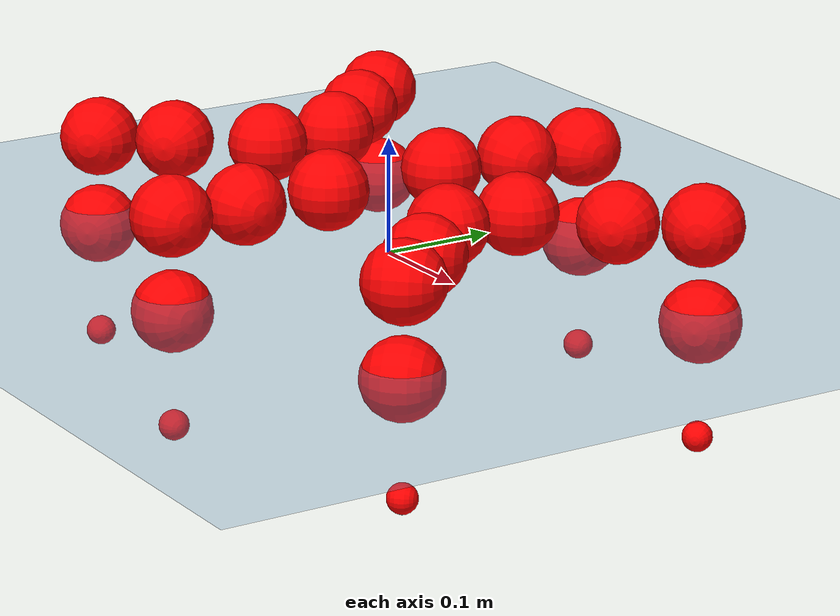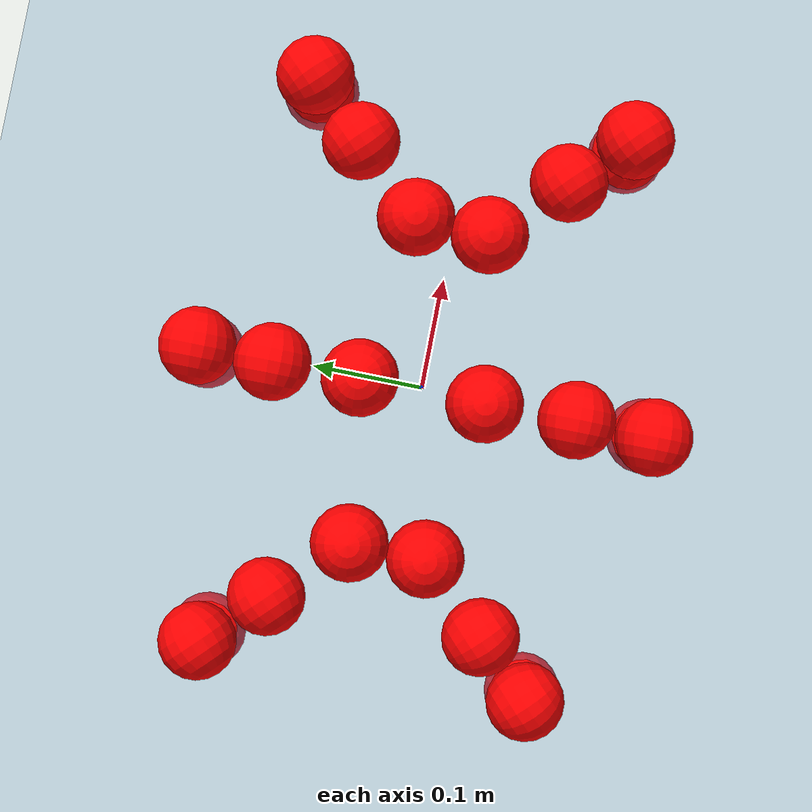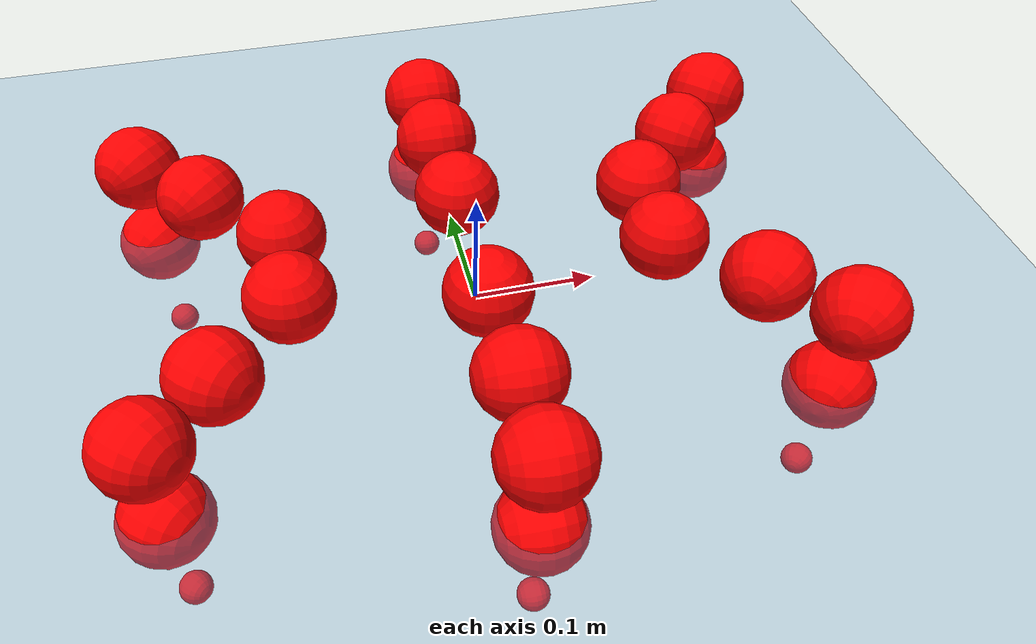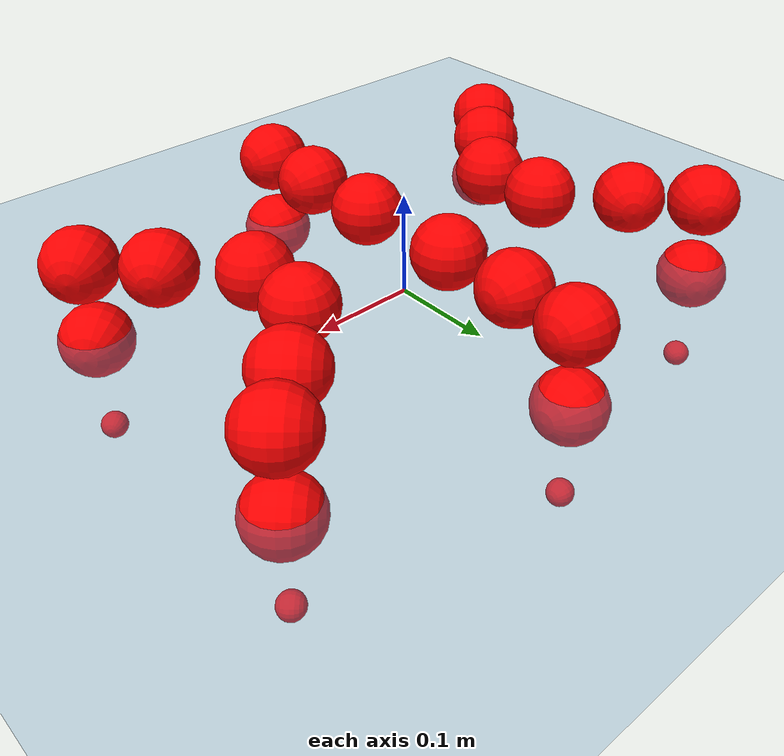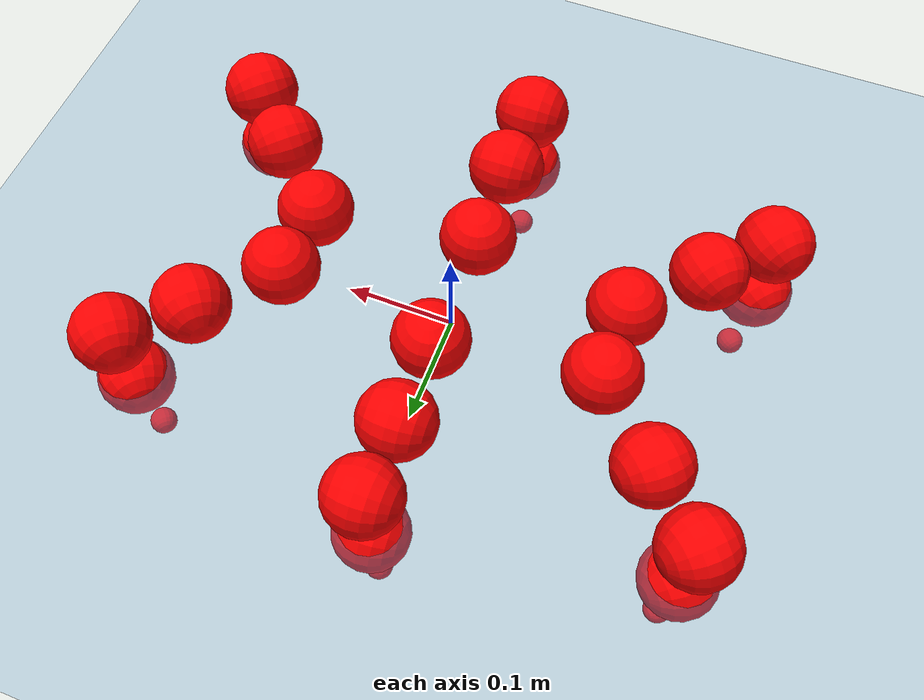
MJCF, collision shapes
<mujoco model="Golem">
  <compiler angle="radian" assetdir="assets" balanceinertia="true" inertiafromgeom="false"/>

  <option timestep="0.005" density="1.2" viscosity="2e-05"/>

  <size nkey="1"/>

  <visual>
    <quality shadowsize="8192"/>
    <map shadowclip="0.5"/>
  </visual>

  <default>
    <default class="/">
      <joint armature="0.01" damping="0.01" frictionloss="0.01"/>
      <geom contype="0" conaffinity="0" group="1" solref="-1000 -80"/>
      <site size="0.01 0.005 0.005" group="5"/>
      <general forcelimited="true" biastype="affine" gainprm="25" biasprm="0 -25 -0.5"/>
      <default class="visual">
        <geom type="mesh" group="2"/>
      </default>
      <default class="collision">
        <geom group="3"/>
      </default>
      <default class="foot">
        <geom size="0.01 0 0" condim="6" group="4" priority="1" solimp="0.015 1 0.01"/>
      </default>
      <default class="reward_collision_sphere">
        <geom group="5" rgba="1 0 0 1"/>
      </default>
    </default>
  </default>

  <asset>
    <texture type="skybox" colorspace="auto" name="//unnamed_texture_0" builtin="gradient" rgb1="0.95 0.95 0.95" rgb2="0.95 0.95 0.95" width="100" height="600"/>
    <texture type="2d" colorspace="auto" name="texplane" builtin="checker" rgb1="0.345 0.575 0.748" rgb2="0.345 0.575 0.748" markrgb="1 1 1" width="512" height="512"/>
    <material name="MatPlane" class="/" texture="texplane" texuniform="true" texrepeat="2 2" specular="0.9"/>
    <mesh name="body" class="/" file="body.stl" scale="0.001 0.001 0.001"/>
    <mesh name="coxa" class="/" file="coxa.stl" scale="0.001 0.001 0.001"/>
    <mesh name="femur" class="/" file="femur.stl" scale="0.001 0.001 0.001"/>
    <mesh name="tibia" class="/" file="tibia.stl" scale="0.001 0.001 0.001"/>
    <mesh name="tarsus" class="/" file="tarsus.stl" scale="0.001 0.001 0.001"/>
  </asset>

  <worldbody>
    <geom name="floor" class="/" size="100 100 0.125" type="plane" group="0" material="MatPlane"/>
    <light name="toplight_shadow" class="/" pos="0 0 5" dir="0.0990148 0.0990148 -0.990148" type="directional" ambient="0.04 0.04 0.04" diffuse="0.55 0.55 0.55" specular="0.12 0.12 0.12"/>
    <light name="toplight_fill" class="/" pos="0 0 5" dir="0.0990148 0.0990148 -0.990148" type="directional" castshadow="false" ambient="0.04 0.04 0.04" diffuse="0.3 0.3 0.3" specular="0.08 0.08 0.08"/>
    <body name="trunk" pos="-0.00144633 -0.00032861 0.000552217" quat="0.999999 -0.00109196 -4.53641e-05 0.000575805">
      <inertial pos="0.0011022 0.00234471 -0.000514508" quat="0.999999 0.0010578 0.000421877 -0.00111155" mass="2.30025" diaginertia="0.00653335 0.00111721 0.0102049"/>
      <joint name="//unnamed_joint_0" type="free"/>
      <geom name="//unnamed_geom_1" class="/" pos="0 0 0.0647734" quat="1 0 0 0" type="mesh" rgba="0.9 0.9 0.9 1" mesh="body"/>
      <site name="imu" class="/" pos="0.120565 0.0100835 0.101313" size="0.00861516"/>
      <camera name="track" class="/" pos="0 -1.29285 0" quat="0.707107 0.707107 0 0" mode="trackcom"/>
      <camera name="ego_camera" class="/" pos="0.120385 0 0.101209" quat="-0.5 -0.5 0.5 0.5"/>
      <body name="coxa_RR" pos="-0.164788 -0.0520529 0.064812" quat="0.382084 -0.000828943 -0.000420956 -0.924127">
        <inertial pos="0.000797608 -0.000318314 -9.17024e-05" quat="0.999917 0.00671609 -0.0104556 0.0032824" mass="0.135802" diaginertia="0.00699235 0.00114925 0.0110684"/>
        <joint name="coxa_joint_RR" class="/" pos="0 0 0" axis="0.00233704 0.00218844 -0.999995" range="-3.13586 3.08739" armature="0.00971985" damping="0.0101483" frictionloss="0.00866543"/>
        <geom name="//unnamed_geom_2" class="/" type="mesh" rgba="0.2 0.2 0.2 1" mesh="coxa"/>
        <geom name="//unnamed_geom_3" class="reward_collision_sphere" size="0.0344606" pos="-0.0277811 0 0"/>
        <body name="femur_RR" pos="0.0556055 0.00252902 -0.00190979" quat="0.499618 -0.499967 0.500403 0.500012">
          <inertial pos="0.00236778 -0.000638505 5.71079e-05" quat="0.999935 0.00827034 -0.00752283 0.00221734" mass="0.13012" diaginertia="0.00687603 0.00114289 0.0106605"/>
          <joint name="femur_joint_RR" class="/" pos="0 0 0" axis="0.00118314 0.000983189 -0.999999" stiffness="0.00342927" range="-3.1307 3.12327" armature="0.00875568" damping="0.00668063" frictionloss="0.00838407"/>
          <geom name="//unnamed_geom_4" class="/" type="mesh" rgba="0.9 0.9 0.9 1" mesh="femur"/>
          <geom name="//unnamed_geom_5" class="reward_collision_sphere" size="0.0344606"/>
          <body name="tibia_RR" pos="0.00125417 -0.068055 0.0011943" quat="-0.00015779 1 -0.000161334 -6.31297e-05">
            <inertial pos="-0.00157326 0.000142472 0.000525075" quat="0.999997 -0.000789681 0.00135765 0.00173765" mass="0.131748" diaginertia="0.00674668 0.0011203 0.010821"/>
            <joint name="tibia_joint_RR" class="/" pos="0 0 0" axis="0.0010894 -0.0106032 0.999943" stiffness="0.00240825" range="-3.12679 3.13578" armature="0.00867141" damping="0.00211155" frictionloss="0.00866407"/>
            <geom name="//unnamed_geom_6" class="/" type="mesh" rgba="0.2 0.2 0.2 1" mesh="tibia"/>
            <geom name="//unnamed_geom_7" class="reward_collision_sphere" size="0.0344606"/>
            <body name="tarsus_RR" pos="0.0800614 0.00220799 9.71314e-05" quat="1 -0.000229475 -7.78926e-05 -9.14467e-05">
              <inertial pos="0.0569192 0.000132157 0.000666159" quat="0.501384 0.499541 0.49944 0.499632" mass="0.131845" diaginertia="0.0070751 0.00115517 0.0110124"/>
              <joint name="tarsus_joint_RR" class="/" pos="0 0 0" axis="-0.000502687 -0.00268687 0.999996" range="-3.14213 3.13746" armature="0.00855142" damping="0.0423929" frictionloss="0.00783663"/>
              <geom name="//unnamed_geom_8" class="/" type="mesh" rgba="0.9 0.9 0.9 1" mesh="tarsus"/>
              <geom name="foot_1" class="foot" size="0.00892162" pos="0.103716 0 0" quat="0 -0.707107 0 0.707107"/>
              <geom name="//unnamed_geom_10" class="reward_collision_sphere" size="0.0344606"/>
              <geom name="//unnamed_geom_11" class="reward_collision_sphere" size="0.0129227" pos="0.0995491 0 0"/>
              <site name="foot_1" class="foot" pos="0.103716 0 0" quat="0 -0.707107 0 0.707107" size="0.00861516"/>
            </body>
          </body>
        </body>
      </body>
      <body name="coxa_RM" pos="-0.00266304 -0.0844703 0.0624964" quat="0.706998 -0.000159813 0.000447406 -0.707215">
        <inertial pos="-0.002141 0.000626372 0.00130764" quat="1 8.02316e-06 8.09307e-05 -0.00067288" mass="0.131664" diaginertia="0.00703144 0.00116137 0.0109818"/>
        <joint name="coxa_joint_RM" class="/" pos="0 0 0" axis="0.00337715 -0.00402583 -0.999986" range="-3.10429 3.14403" armature="0.00922915" damping="0.0135012" frictionloss="0.00860768"/>
        <geom name="//unnamed_geom_12" class="/" type="mesh" rgba="0.2 0.2 0.2 1" mesh="coxa"/>
        <geom name="//unnamed_geom_13" class="reward_collision_sphere" size="0.0344606" pos="-0.0277811 0 0"/>
        <body name="femur_RM" pos="0.0536168 0.0020225 0.00101692" quat="0.49999 -0.499919 0.499999 0.500092">
          <inertial pos="0.000167615 -0.000602263 -0.000764531" quat="0.999919 -0.00720728 -0.0101598 -0.00246833" mass="0.123386" diaginertia="0.00660991 0.00109943 0.010403"/>
          <joint name="femur_joint_RM" class="/" pos="0 0 0" axis="0.000297602 0.000114499 -1" range="-3.19115 3.16029" armature="0.00881236" damping="0.00832803" frictionloss="0.00864657"/>
          <geom name="//unnamed_geom_14" class="/" type="mesh" rgba="0.9 0.9 0.9 1" mesh="femur"/>
          <geom name="//unnamed_geom_15" class="reward_collision_sphere" size="0.0344606"/>
          <body name="tibia_RM" pos="-0.000887423 -0.0688002 -0.00164723" quat="0.000772432 0.999999 -0.000374545 -0.00089285">
            <inertial pos="-0.00138673 -0.000574207 0.00111774" quat="0.999967 -0.0022341 0.00774234 0.00134613" mass="0.127006" diaginertia="0.00675552 0.00109313 0.0102482"/>
            <joint name="tibia_joint_RM" class="/" pos="0 0 0" axis="-0.00186945 -0.00182601 0.999997" range="-3.13808 3.14359" armature="0.00872067" damping="0" frictionloss="0.00906294"/>
            <geom name="//unnamed_geom_16" class="/" type="mesh" rgba="0.2 0.2 0.2 1" mesh="tibia"/>
            <geom name="//unnamed_geom_17" class="reward_collision_sphere" size="0.0344606"/>
            <body name="tarsus_RM" pos="0.0816578 0.00048319 -0.00106372" quat="0.999999 -0.00103466 5.67977e-05 0.000431642">
              <inertial pos="0.0557434 0.000361215 0.000263466" quat="0.500493 0.502353 0.500764 0.496371" mass="0.126718" diaginertia="0.0068301 0.00111766 0.010621"/>
              <joint name="tarsus_joint_RM" class="/" pos="0 0 0" axis="0.00601702 -0.00871336 0.999944" range="-3.16498 3.19017" armature="0.0084129" damping="0.00698928" frictionloss="0.00751127"/>
              <geom name="//unnamed_geom_18" class="/" type="mesh" rgba="0.9 0.9 0.9 1" mesh="tarsus"/>
              <geom name="foot_2" class="foot" size="0.00825801" pos="0.103716 0 0" quat="0 -0.707107 0 0.707107"/>
              <geom name="//unnamed_geom_20" class="reward_collision_sphere" size="0.0344606"/>
              <geom name="//unnamed_geom_21" class="reward_collision_sphere" size="0.0129227" pos="0.0995491 0 0"/>
              <site name="foot_2" class="foot" pos="0.103716 0 0" quat="0 -0.707107 0 0.707107" size="0.00861516"/>
            </body>
          </body>
        </body>
      </body>
      <body name="coxa_RF" pos="0.162393 -0.0516478 0.0657025" quat="0.924075 0.00090628 0.000181807 -0.382209">
        <inertial pos="0.00251667 0.00244736 0.000126632" quat="0.999998 -0.0016948 0.000335694 0.000873466" mass="0.126972" diaginertia="0.00688734 0.00111627 0.010618"/>
        <joint name="coxa_joint_RF" class="/" pos="0 0 0" axis="0.00214066 0.000384349 -0.999998" range="-3.14251 3.08996" armature="0.00894962" damping="0.0183305" frictionloss="0.00857665"/>
        <geom name="//unnamed_geom_22" class="/" type="mesh" rgba="0.2 0.2 0.2 1" mesh="coxa"/>
        <geom name="//unnamed_geom_23" class="reward_collision_sphere" size="0.0344606" pos="-0.0277811 0 0"/>
        <body name="femur_RF" pos="0.0549938 -0.000653452 0.000314618" quat="0.50025 -0.500319 0.499122 0.500308">
          <inertial pos="-0.000175336 -0.000766435 0.00264849" quat="0.999946 -0.00957907 -0.00375485 0.00163549" mass="0.125243" diaginertia="0.00657736 0.00109238 0.00997267"/>
          <joint name="femur_joint_RF" class="/" pos="0 0 0" axis="0.0123649 -0.00333935 -0.999918" range="-3.14485 3.12997" armature="0.0098136" damping="0.0076568" frictionloss="0.00931868"/>
          <geom name="//unnamed_geom_24" class="/" type="mesh" rgba="0.9 0.9 0.9 1" mesh="femur"/>
          <geom name="//unnamed_geom_25" class="reward_collision_sphere" size="0.0344606"/>
          <body name="tibia_RF" pos="-0.000449338 -0.0690727 -0.00120846" quat="-4.51032e-06 1 1.00822e-05 9.76106e-06">
            <inertial pos="-0.000268322 0.000258985 4.22432e-05" quat="0.999961 0.00272789 0.00832079 -0.00095025" mass="0.12633" diaginertia="0.00661991 0.00110441 0.0107203"/>
            <joint name="tibia_joint_RF" class="/" pos="0 0 0" axis="0.00254967 -0.00164975 0.999995" range="-3.13571 3.1869" armature="0.00857855" damping="0.00548943" frictionloss="0.00824035"/>
            <geom name="//unnamed_geom_26" class="/" type="mesh" rgba="0.2 0.2 0.2 1" mesh="tibia"/>
            <geom name="//unnamed_geom_27" class="reward_collision_sphere" size="0.0344606"/>
            <body name="tarsus_RF" pos="0.0798593 -0.000938909 0.00149641" quat="0.999999 0.00113095 0.000219022 -0.000444829">
              <inertial pos="0.0558027 0.000194885 0.000330379" quat="0.496508 0.503216 0.50043 0.499824" mass="0.127035" diaginertia="0.00671743 0.00111051 0.0102252"/>
              <joint name="tarsus_joint_RF" class="/" pos="0 0 0" axis="-0.00687592 -0.000893156 0.999976" range="-3.13602 3.12818" armature="0.00859866" damping="0.0112076" frictionloss="0.00893215"/>
              <geom name="//unnamed_geom_28" class="/" type="mesh" rgba="0.9 0.9 0.9 1" mesh="tarsus"/>
              <geom name="foot_3" class="foot" size="0.00917989" pos="0.103716 0 0" quat="0 -0.707107 0 0.707107"/>
              <geom name="//unnamed_geom_30" class="reward_collision_sphere" size="0.0344606"/>
              <geom name="//unnamed_geom_31" class="reward_collision_sphere" size="0.0129227" pos="0.0995491 0 0"/>
              <site name="foot_3" class="foot" pos="0.103716 0 0" quat="0 -0.707107 0 0.707107" size="0.00861516"/>
            </body>
          </body>
        </body>
      </body>
      <body name="coxa_LR" pos="-0.16403 0.0546604 0.0660721" quat="0.382201 -0.000799198 -0.00044866 0.924079">
        <inertial pos="0.000156581 -0.000697536 -0.000603021" quat="0.999999 0.000826997 0.000486162 -0.000303896" mass="0.128691" diaginertia="0.00665491 0.00112928 0.0103175"/>
        <joint name="coxa_joint_LR" class="/" pos="0 0 0" axis="-0.000608409 -0.0144372 -0.999896" range="-3.10005 3.1414" armature="0.0086907" damping="0.00522753" frictionloss="0.00858811"/>
        <geom name="//unnamed_geom_32" class="/" type="mesh" rgba="0.2 0.2 0.2 1" mesh="coxa"/>
        <geom name="//unnamed_geom_33" class="reward_collision_sphere" size="0.0344606" pos="-0.0277811 0 0"/>
        <body name="femur_LR" pos="0.0583107 -0.00150973 -0.0023631" quat="0.499927 -0.499806 0.500226 0.500041">
          <inertial pos="-0.00077131 4.46192e-05 -0.000284292" quat="0.999996 -0.00113853 0.00088394 -0.00224752" mass="0.126741" diaginertia="0.0068232 0.00112569 0.010726"/>
          <joint name="femur_joint_LR" class="/" pos="0 0 0" axis="-0.00566225 0.00228717 0.999981" range="-3.18654 3.18419" armature="0.00871335" damping="0" frictionloss="0.00905178"/>
          <geom name="//unnamed_geom_34" class="/" type="mesh" rgba="0.9 0.9 0.9 1" mesh="femur"/>
          <geom name="//unnamed_geom_35" class="reward_collision_sphere" size="0.0344606"/>
          <body name="tibia_LR" pos="0.000515217 -0.0713167 -0.00126611" quat="0.000412195 1 2.35567e-05 0.000313395">
            <inertial pos="-0.00274475 0.0011027 -0.00223857" quat="0.999998 -0.000546769 0.00147719 0.000981292" mass="0.127752" diaginertia="0.00683528 0.00116409 0.0105282"/>
            <joint name="tibia_joint_LR" class="/" pos="0 0 0" axis="0.00171288 -0.0013908 -0.999998" range="-3.09216 3.17369" armature="0.00857521" damping="0.00172768" frictionloss="0.0089498"/>
            <geom name="//unnamed_geom_36" class="/" type="mesh" rgba="0.2 0.2 0.2 1" mesh="tibia"/>
            <geom name="//unnamed_geom_37" class="reward_collision_sphere" size="0.0344606"/>
            <body name="tarsus_LR" pos="0.0831382 0.000970705 -6.57919e-05" quat="1 -0.00014315 -3.99954e-05 5.124e-05">
              <inertial pos="0.0556762 -0.000433939 -0.000869743" quat="0.497872 0.500269 0.500122 0.50173" mass="0.131829" diaginertia="0.00696652 0.00117644 0.0109053"/>
              <joint name="tarsus_joint_LR" class="/" pos="0 0 0" axis="-0.0036769 0.0128171 -0.999911" stiffness="0.00358233" range="-3.13012 3.10709" armature="0.00888562" damping="0.0263874" frictionloss="0.00933074"/>
              <geom name="//unnamed_geom_38" class="/" type="mesh" rgba="0.9 0.9 0.9 1" mesh="tarsus"/>
              <geom name="foot_4" class="foot" size="0.00828427" pos="0.103716 0 0" quat="0.707107 0 -0.707107 0"/>
              <geom name="//unnamed_geom_40" class="reward_collision_sphere" size="0.0344606"/>
              <geom name="//unnamed_geom_41" class="reward_collision_sphere" size="0.0129227" pos="0.0995491 0 0"/>
              <site name="foot_4" class="foot" pos="0.103716 0 0" quat="0.707107 0 -0.707107 0" size="0.00861516"/>
            </body>
          </body>
        </body>
      </body>
      <body name="coxa_LM" pos="-0.00164676 0.082368 0.0645306" quat="0.707073 3.32372e-06 1.3892e-05 0.70714">
        <inertial pos="0.00273202 0.00247704 -0.000234352" quat="1 0.000349064 -0.000258374 4.11148e-05" mass="0.127426" diaginertia="0.00670678 0.00112695 0.0105629"/>
        <joint name="coxa_joint_LM" class="/" pos="0 0 0" axis="-0.00163114 -0.0037895 -0.999991" range="-3.12363 3.12301" armature="0.00949496" damping="0.00525935" frictionloss="0.00888094"/>
        <geom name="//unnamed_geom_42" class="/" type="mesh" rgba="0.2 0.2 0.2 1" mesh="coxa"/>
        <geom name="//unnamed_geom_43" class="reward_collision_sphere" size="0.0344606" pos="-0.0277811 0 0"/>
        <body name="femur_LM" pos="0.0499847 0.00127316 -0.00117259" quat="0.500044 -0.500047 0.498991 0.500916">
          <inertial pos="-0.00115285 0.000408198 0.000749947" quat="0.999963 0.00849931 -3.20994e-05 0.00120613" mass="0.126087" diaginertia="0.00686277 0.00109784 0.0103459"/>
          <joint name="femur_joint_LM" class="/" pos="0 0 0" axis="-0.000642656 -0.00225401 0.999997" range="-3.15166 3.14187" armature="0.00752459" damping="0" frictionloss="0.00881447"/>
          <geom name="//unnamed_geom_44" class="/" type="mesh" rgba="0.9 0.9 0.9 1" mesh="femur"/>
          <geom name="//unnamed_geom_45" class="reward_collision_sphere" size="0.0344606"/>
          <body name="tibia_LM" pos="0.00222776 -0.0671397 -0.00116195" quat="-7.94958e-06 1 3.53402e-06 3.35233e-05">
            <inertial pos="-0.0011996 -0.000450863 0.000127443" quat="0.999991 -0.000390009 0.00350799 0.00245147" mass="0.124301" diaginertia="0.00670571 0.0011403 0.010762"/>
            <joint name="tibia_joint_LM" class="/" pos="0 0 0" axis="0.00234574 -0.00482999 -0.999986" stiffness="0.000913093" range="-3.12391 3.16897" armature="0.00867851" damping="0" frictionloss="0.00829144"/>
            <geom name="//unnamed_geom_46" class="/" type="mesh" rgba="0.2 0.2 0.2 1" mesh="tibia"/>
            <geom name="//unnamed_geom_47" class="reward_collision_sphere" size="0.0344606"/>
            <body name="tarsus_LM" pos="0.0823366 0.00153662 -0.00149079" quat="1 7.16977e-05 7.20189e-05 0.000129318">
              <inertial pos="0.0571324 3.18941e-05 -0.000103608" quat="0.499222 0.500882 0.49932 0.500574" mass="0.135659" diaginertia="0.00699276 0.0011618 0.0106214"/>
              <joint name="tarsus_joint_LM" class="/" pos="0 0 0" axis="-0.00190563 0.00225828 -0.999996" stiffness="0.00971337" range="-3.13839 3.11535" armature="0.0085864" damping="0.0182589" frictionloss="0.0086203"/>
              <geom name="//unnamed_geom_48" class="/" type="mesh" rgba="0.9 0.9 0.9 1" mesh="tarsus"/>
              <geom name="foot_5" class="foot" size="0.00843597" pos="0.103716 0 0" quat="0.707107 0 -0.707107 0"/>
              <geom name="//unnamed_geom_50" class="reward_collision_sphere" size="0.0344606"/>
              <geom name="//unnamed_geom_51" class="reward_collision_sphere" size="0.0129227" pos="0.0995491 0 0"/>
              <site name="foot_5" class="foot" pos="0.103716 0 0" quat="0.707107 0 -0.707107 0" size="0.00861516"/>
            </body>
          </body>
        </body>
      </body>
      <body name="coxa_LF" pos="0.165086 0.0537228 0.0659628" quat="0.923869 -2.27934e-05 4.21301e-05 0.382709">
        <inertial pos="-0.000114634 -0.000969254 0.000447061" quat="1 9.76841e-05 -0.00014661 -3.83916e-05" mass="0.124985" diaginertia="0.00670645 0.00113329 0.0106853"/>
        <joint name="coxa_joint_LF" class="/" pos="0 0 0" axis="0.00803139 9.77185e-05 -0.999968" stiffness="0.000155009" range="-3.1328 3.14352" armature="0.00830504" damping="0.00756964" frictionloss="0.00867103"/>
        <geom name="//unnamed_geom_52" class="/" type="mesh" rgba="0.2 0.2 0.2 1" mesh="coxa"/>
        <geom name="//unnamed_geom_53" class="reward_collision_sphere" size="0.0344606" pos="-0.0277811 0 0"/>
        <body name="femur_LF" pos="0.0547308 0.00293477 -0.00251981" quat="0.499906 -0.50039 0.500068 0.499636">
          <inertial pos="-0.00215651 -0.000395319 0.000981802" quat="0.999998 -0.00118612 0.00092973 -0.00127226" mass="0.128982" diaginertia="0.00671149 0.00109623 0.0104491"/>
          <joint name="femur_joint_LF" class="/" pos="0 0 0" axis="-0.00763456 0.00921726 0.999928" range="-3.13949 3.09292" armature="0.00784009" damping="0.0027306" frictionloss="0.00821453"/>
          <geom name="//unnamed_geom_54" class="/" type="mesh" rgba="0.9 0.9 0.9 1" mesh="femur"/>
          <geom name="//unnamed_geom_55" class="reward_collision_sphere" size="0.0344606"/>
          <body name="tibia_LF" pos="-0.00219067 -0.0697135 0.00134718" quat="0.000198218 1 -0.000186181 -0.000307344">
            <inertial pos="-0.000976944 0.000157473 -0.000434273" quat="0.999931 -0.00932079 -0.00715134 -4.46399e-05" mass="0.12558" diaginertia="0.00677816 0.00112076 0.0105391"/>
            <joint name="tibia_joint_LF" class="/" pos="0 0 0" axis="-0.00145468 -0.00291674 -0.999995" range="-3.1362 3.13333" armature="0.00749101" damping="0" frictionloss="0.008526"/>
            <geom name="//unnamed_geom_56" class="/" type="mesh" rgba="0.2 0.2 0.2 1" mesh="tibia"/>
            <geom name="//unnamed_geom_57" class="reward_collision_sphere" size="0.0344606"/>
            <body name="tarsus_LF" pos="0.0819603 -0.000197528 0.000417348" quat="0.999999 0.000359102 -0.00114852 -0.000493606">
              <inertial pos="0.0576115 -0.0018777 0.000420811" quat="0.499376 0.502376 0.499056 0.499185" mass="0.125985" diaginertia="0.00674986 0.00110619 0.0104768"/>
              <joint name="tarsus_joint_LF" class="/" pos="0 0 0" axis="-0.0110781 -0.00376646 -0.999932" stiffness="0.00179835" range="-3.09718 3.13827" armature="0.00872888" damping="0.0210787" frictionloss="0.00851371"/>
              <geom name="//unnamed_geom_58" class="/" type="mesh" rgba="0.9 0.9 0.9 1" mesh="tarsus"/>
              <geom name="foot_6" class="foot" size="0.00792867" pos="0.103716 0 0" quat="0.707107 0 -0.707107 0"/>
              <geom name="//unnamed_geom_60" class="reward_collision_sphere" size="0.0344606"/>
              <geom name="//unnamed_geom_61" class="reward_collision_sphere" size="0.0129227" pos="0.0995491 0 0"/>
              <site name="foot_6" class="foot" pos="0.103716 0 0" quat="0.707107 0 -0.707107 0" size="0.00861516"/>
            </body>
          </body>
        </body>
      </body>
    </body>
  </worldbody>

  <contact>
    <pair class="/" geom1="floor" geom2="foot_1" name="//unnamed_contact_0"/>
    <pair class="/" geom1="floor" geom2="foot_2" name="//unnamed_contact_1"/>
    <pair class="/" geom1="floor" geom2="foot_3" name="//unnamed_contact_2"/>
    <pair class="/" geom1="floor" geom2="foot_4" name="//unnamed_contact_3"/>
    <pair class="/" geom1="floor" geom2="foot_5" name="//unnamed_contact_4"/>
    <pair class="/" geom1="floor" geom2="foot_6" name="//unnamed_contact_5"/>
  </contact>

  <actuator>
    <general name="coxa_joint_RR" class="/" joint="coxa_joint_RR" forcerange="-6.35231 6.35231" gainprm="20.8301" biasprm="0 -20.8301 -0.434773"/>
    <general name="femur_joint_RR" class="/" joint="femur_joint_RR" forcerange="-6.26701 6.26701" gainprm="20.8301" biasprm="0 -20.8301 -0.434773"/>
    <general name="tibia_joint_RR" class="/" joint="tibia_joint_RR" forcerange="-6.41234 6.41234" gainprm="20.8301" biasprm="0 -20.8301 -0.434773"/>
    <general name="tarsus_joint_RR" class="/" joint="tarsus_joint_RR" forcerange="-6.53551 6.53551" gainprm="20.8301" biasprm="0 -20.8301 -0.434773"/>
    <general name="coxa_joint_RM" class="/" joint="coxa_joint_RM" forcerange="-6.52687 6.52687" gainprm="20.8301" biasprm="0 -20.8301 -0.434773"/>
    <general name="femur_joint_RM" class="/" joint="femur_joint_RM" forcerange="-5.88106 5.88106" gainprm="20.8301" biasprm="0 -20.8301 -0.434773"/>
    <general name="tibia_joint_RM" class="/" joint="tibia_joint_RM" forcerange="-6.28335 6.28335" gainprm="20.8301" biasprm="0 -20.8301 -0.434773"/>
    <general name="tarsus_joint_RM" class="/" joint="tarsus_joint_RM" forcerange="-6.09196 6.09196" gainprm="20.8301" biasprm="0 -20.8301 -0.434773"/>
    <general name="coxa_joint_RF" class="/" joint="coxa_joint_RF" forcerange="-5.82942 5.82942" gainprm="20.8301" biasprm="0 -20.8301 -0.434773"/>
    <general name="femur_joint_RF" class="/" joint="femur_joint_RF" forcerange="-5.92999 5.92999" gainprm="20.8301" biasprm="0 -20.8301 -0.434773"/>
    <general name="tibia_joint_RF" class="/" joint="tibia_joint_RF" forcerange="-6.60486 6.60486" gainprm="20.8301" biasprm="0 -20.8301 -0.434773"/>
    <general name="tarsus_joint_RF" class="/" joint="tarsus_joint_RF" forcerange="-6.19396 6.19396" gainprm="20.8301" biasprm="0 -20.8301 -0.434773"/>
    <general name="coxa_joint_LR" class="/" joint="coxa_joint_LR" forcerange="-6.2729 6.2729" gainprm="20.8301" biasprm="0 -20.8301 -0.434773"/>
    <general name="femur_joint_LR" class="/" joint="femur_joint_LR" forcerange="-6.23269 6.23269" gainprm="20.8301" biasprm="0 -20.8301 -0.434773"/>
    <general name="tibia_joint_LR" class="/" joint="tibia_joint_LR" forcerange="-5.7141 5.7141" gainprm="20.8301" biasprm="0 -20.8301 -0.434773"/>
    <general name="tarsus_joint_LR" class="/" joint="tarsus_joint_LR" forcerange="-6.88565 6.88565" gainprm="20.8301" biasprm="0 -20.8301 -0.434773"/>
    <general name="coxa_joint_LM" class="/" joint="coxa_joint_LM" forcerange="-6.29926 6.29926" gainprm="20.8301" biasprm="0 -20.8301 -0.434773"/>
    <general name="femur_joint_LM" class="/" joint="femur_joint_LM" forcerange="-6.21163 6.21163" gainprm="20.8301" biasprm="0 -20.8301 -0.434773"/>
    <general name="tibia_joint_LM" class="/" joint="tibia_joint_LM" forcerange="-6.23836 6.23836" gainprm="20.8301" biasprm="0 -20.8301 -0.434773"/>
    <general name="tarsus_joint_LM" class="/" joint="tarsus_joint_LM" forcerange="-6.4274 6.4274" gainprm="20.8301" biasprm="0 -20.8301 -0.434773"/>
    <general name="coxa_joint_LF" class="/" joint="coxa_joint_LF" forcerange="-6.24642 6.24642" gainprm="20.8301" biasprm="0 -20.8301 -0.434773"/>
    <general name="femur_joint_LF" class="/" joint="femur_joint_LF" forcerange="-6.30855 6.30855" gainprm="20.8301" biasprm="0 -20.8301 -0.434773"/>
    <general name="tibia_joint_LF" class="/" joint="tibia_joint_LF" forcerange="-6.089 6.089" gainprm="20.8301" biasprm="0 -20.8301 -0.434773"/>
    <general name="tarsus_joint_LF" class="/" joint="tarsus_joint_LF" forcerange="-6.22422 6.22422" gainprm="20.8301" biasprm="0 -20.8301 -0.434773"/>
  </actuator>

  <sensor>
    <gyro site="imu" name="imu_angular_velocity"/>
    <velocimeter site="imu" name="imu_linear_velocity"/>
    <framelinvel objtype="site" objname="foot_1" name="foot_1_global_linear_velocity"/>
    <framelinvel objtype="site" objname="foot_2" name="foot_2_global_linear_velocity"/>
    <framelinvel objtype="site" objname="foot_3" name="foot_3_global_linear_velocity"/>
    <framelinvel objtype="site" objname="foot_4" name="foot_4_global_linear_velocity"/>
    <framelinvel objtype="site" objname="foot_5" name="foot_5_global_linear_velocity"/>
    <framelinvel objtype="site" objname="foot_6" name="foot_6_global_linear_velocity"/>
  </sensor>

  <keyframe>
    <key name="home" qpos="0 0 0.1457 1 0 0 0 0 0 0 0 0 0 0 0 0 0 0 0 0 0 0 0 0 0 0 0 0 0 0 0"/>
  </keyframe>
</mujoco>
